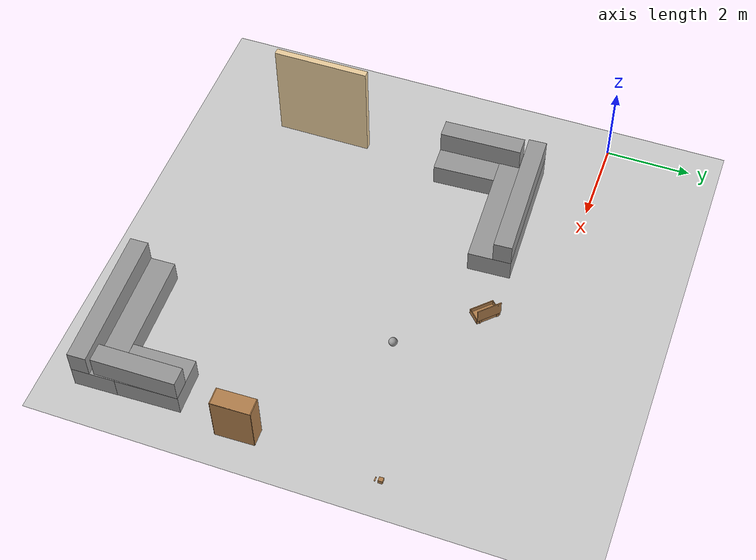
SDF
<sdf version="1.6">
 <world name="default">
  <model name="ground_plane">
   <static>1</static>
   <link name="link">
    <collision name="collision">
     <geometry><plane><normal>0 0 1</normal><size>100 100</size></plane></geometry>
     <surface>
      <contact><collide_bitmask>65535</collide_bitmask></contact>
      <friction><ode><mu>100</mu><mu2>50</mu2></ode></friction>
     </surface>
    </collision>
    <visual name="visual">
     <cast_shadows>0</cast_shadows>
     <geometry><plane><normal>0 0 1</normal><size>100 100</size></plane></geometry>
     <material>
      <script><uri>file://media/materials/scripts/gazebo.material</uri><name>Gazebo/Grey</name></script>
     </material>
    </visual>
   </link>
  </model>
  <model name="Sofa">
   <link name="link_0">
    <inertial>
     <mass>1.78921</mass>
     <inertia><ixx>0.19365</ixx><ixy>0</ixy><ixz>0</ixz><iyy>1.64196</iyy><iyz>0</iyz><izz>1.74651</izz></inertia>
    </inertial>
    <pose>0.515913 0.4827 -0.27126 0 -0 0</pose>
    <visual name="visual">
     <geometry><box><size>3.27317 1 0.546616</size></box></geometry>
     <material>
      <lighting>1</lighting>
      <script><uri>file://media/materials/scripts/gazebo.material</uri><name>Gazebo/Grey</name></script>
      <shader type="pixel"/>
      <emissive>0 0 0 1</emissive>
     </material>
    </visual>
    <collision name="collision">
     <geometry><box><size>3.27317 1 0.546616</size></box></geometry>
     <surface>
      <friction>
       <ode><mu>1</mu><mu2>1</mu2><fdir1>0 0 0</fdir1><slip1>0</slip1><slip2>0</slip2></ode>
       <torsional>
        <coefficient>1</coefficient>
        <patch_radius>0</patch_radius>
        <surface_radius>0</surface_radius>
        <use_patch_radius>1</use_patch_radius>
        <ode><slip>0</slip></ode>
       </torsional>
      </friction>
      <bounce><restitution_coefficient>0</restitution_coefficient><threshold>1e+06</threshold></bounce>
      <contact>
       <collide_without_contact>0</collide_without_contact>
       <collide_without_contact_bitmask>1</collide_without_contact_bitmask>
       <collide_bitmask>1</collide_bitmask>
       <ode>
        <soft_cfm>0</soft_cfm>
        <soft_erp>0.2</soft_erp>
        <kp>1e+13</kp>
        <kd>1</kd>
        <max_vel>0.01</max_vel>
        <min_depth>0</min_depth>
       </ode>
       <bullet>
        <split_impulse>1</split_impulse>
        <split_impulse_penetration_threshold>-0.01</split_impulse_penetration_threshold>
        <soft_cfm>0</soft_cfm>
        <soft_erp>0.2</soft_erp>
        <kp>1e+13</kp>
        <kd>1</kd>
       </bullet>
      </contact>
     </surface>
    </collision>
   </link>
   <link name="link_0_clone">
    <inertial>
     <mass>0.763707</mass>
     <inertia>
      <ixx>0.0306107</ixx>
      <ixy>0</ixy>
      <ixz>0</ixz>
      <iyy>0.700856</iyy>
      <iyz>0</iyz>
      <izz>0.693436</izz>
     </inertia>
    </inertial>
    <pose>0.515913 0.769281 0.275356 0 -0 0</pose>
    <visual name="visual">
     <geometry><box><size>3.27317 0.426838 0.546616</size></box></geometry>
     <material>
      <lighting>1</lighting>
      <script><uri>file://media/materials/scripts/gazebo.material</uri><name>Gazebo/Grey</name></script>
      <shader type="pixel"/>
      <emissive>0 0 0 1</emissive>
     </material>
    </visual>
    <collision name="collision">
     <geometry><box><size>3.27317 0.426838 0.546616</size></box></geometry>
     <surface>
      <friction>
       <ode><mu>1</mu><mu2>1</mu2><fdir1>0 0 0</fdir1><slip1>0</slip1><slip2>0</slip2></ode>
       <torsional>
        <coefficient>1</coefficient>
        <patch_radius>0</patch_radius>
        <surface_radius>0</surface_radius>
        <use_patch_radius>1</use_patch_radius>
        <ode><slip>0</slip></ode>
       </torsional>
      </friction>
      <bounce><restitution_coefficient>0</restitution_coefficient><threshold>1e+06</threshold></bounce>
      <contact>
       <collide_without_contact>0</collide_without_contact>
       <collide_without_contact_bitmask>1</collide_without_contact_bitmask>
       <collide_bitmask>1</collide_bitmask>
       <ode>
        <soft_cfm>0</soft_cfm>
        <soft_erp>0.2</soft_erp>
        <kp>1e+13</kp>
        <kd>1</kd>
        <max_vel>0.01</max_vel>
        <min_depth>0</min_depth>
       </ode>
       <bullet>
        <split_impulse>1</split_impulse>
        <split_impulse_penetration_threshold>-0.01</split_impulse_penetration_threshold>
        <soft_cfm>0</soft_cfm>
        <soft_erp>0.2</soft_erp>
        <kp>1e+13</kp>
        <kd>1</kd>
       </bullet>
      </contact>
     </surface>
    </collision>
   </link>
   <link name="link_0_clone_clone">
    <inertial>
     <mass>0.450951</mass>
     <inertia>
      <ixx>0.0180749</ixx>
      <ixy>0</ixy>
      <ixz>0</ixz>
      <iyy>0.151605</iyy>
      <iyz>0</iyz>
      <izz>0.147223</izz>
     </inertia>
    </inertial>
    <pose>-0.891825 -0.505668 0.267165 0 -0 1.5548</pose>
    <visual name="visual">
     <geometry><box><size>1.93274 0.426838 0.546616</size></box></geometry>
     <material>
      <lighting>1</lighting>
      <script><uri>file://media/materials/scripts/gazebo.material</uri><name>Gazebo/Grey</name></script>
      <shader type="pixel"/>
      <emissive>0 0 0 1</emissive>
     </material>
    </visual>
    <collision name="collision">
     <geometry><box><size>1.93274 0.426838 0.546616</size></box></geometry>
     <surface>
      <friction>
       <ode><mu>1</mu><mu2>1</mu2><fdir1>0 0 0</fdir1><slip1>0</slip1><slip2>0</slip2></ode>
       <torsional>
        <coefficient>1</coefficient>
        <patch_radius>0</patch_radius>
        <surface_radius>0</surface_radius>
        <use_patch_radius>1</use_patch_radius>
        <ode><slip>0</slip></ode>
       </torsional>
      </friction>
      <bounce><restitution_coefficient>0</restitution_coefficient><threshold>1e+06</threshold></bounce>
      <contact>
       <collide_without_contact>0</collide_without_contact>
       <collide_without_contact_bitmask>1</collide_without_contact_bitmask>
       <collide_bitmask>1</collide_bitmask>
       <ode>
        <soft_cfm>0</soft_cfm>
        <soft_erp>0.2</soft_erp>
        <kp>1e+13</kp>
        <kd>1</kd>
        <max_vel>0.01</max_vel>
        <min_depth>0</min_depth>
       </ode>
       <bullet>
        <split_impulse>1</split_impulse>
        <split_impulse_penetration_threshold>-0.01</split_impulse_penetration_threshold>
        <soft_cfm>0</soft_cfm>
        <soft_erp>0.2</soft_erp>
        <kp>1e+13</kp>
        <kd>1</kd>
       </bullet>
      </contact>
     </surface>
    </collision>
   </link>
   <link name="link_1">
    <inertial>
     <mass>0.773084</mass>
     <inertia>
      <ixx>0.155067</ixx>
      <ixy>0</ixy>
      <ixz>0</ixz>
      <iyy>0.0825363</iyy>
      <iyz>0</iyz>
      <izz>0.201378</izz>
     </inertia>
    </inertial>
    <pose>-0.620672 -0.746314 -0.27126 0 -0 0</pose>
    <visual name="visual">
     <geometry><box><size>1 1.45803 0.530235</size></box></geometry>
     <material>
      <lighting>1</lighting>
      <script><uri>file://media/materials/scripts/gazebo.material</uri><name>Gazebo/Grey</name></script>
      <shader type="pixel"/>
      <emissive>0 0 0 1</emissive>
     </material>
    </visual>
    <collision name="collision">
     <geometry><box><size>1 1.45803 0.530235</size></box></geometry>
     <surface>
      <friction>
       <ode><mu>1</mu><mu2>1</mu2><fdir1>0 0 0</fdir1><slip1>0</slip1><slip2>0</slip2></ode>
       <torsional>
        <coefficient>1</coefficient>
        <patch_radius>0</patch_radius>
        <surface_radius>0</surface_radius>
        <use_patch_radius>1</use_patch_radius>
        <ode><slip>0</slip></ode>
       </torsional>
      </friction>
      <bounce><restitution_coefficient>0</restitution_coefficient><threshold>1e+06</threshold></bounce>
      <contact>
       <collide_without_contact>0</collide_without_contact>
       <collide_without_contact_bitmask>1</collide_without_contact_bitmask>
       <collide_bitmask>1</collide_bitmask>
       <ode>
        <soft_cfm>0</soft_cfm>
        <soft_erp>0.2</soft_erp>
        <kp>1e+13</kp>
        <kd>1</kd>
        <max_vel>0.01</max_vel>
        <min_depth>0</min_depth>
       </ode>
       <bullet>
        <split_impulse>1</split_impulse>
        <split_impulse_penetration_threshold>-0.01</split_impulse_penetration_threshold>
        <soft_cfm>0</soft_cfm>
        <soft_erp>0.2</soft_erp>
        <kp>1e+13</kp>
        <kd>1</kd>
       </bullet>
      </contact>
     </surface>
    </collision>
   </link>
   <joint name="link_0_JOINT_0" type="revolute">
    <parent>link_0</parent>
    <child>link_1</child>
    <axis>
     <xyz>1 0 0</xyz>
     <limit>
      <lower>-1.79769e+308</lower>
      <upper>1.79769e+308</upper>
      <effort>-1</effort>
      <velocity>-1</velocity>
     </limit>
     <dynamics>
      <spring_reference>0</spring_reference>
      <spring_stiffness>0</spring_stiffness>
      <damping>0</damping>
     </dynamics>
     <use_parent_model_frame>0</use_parent_model_frame>
    </axis>
    <physics>
     <ode><limit><cfm>0</cfm><erp>0.2</erp></limit><suspension><cfm>0</cfm><erp>0.2</erp></suspension></ode>
    </physics>
   </joint>
   <joint name="link_0_JOINT_2" type="revolute">
    <parent>link_0</parent>
    <child>link_0_clone</child>
    <axis>
     <xyz>1 0 0</xyz>
     <limit>
      <lower>-1.79769e+308</lower>
      <upper>1.79769e+308</upper>
      <effort>-1</effort>
      <velocity>-1</velocity>
     </limit>
     <dynamics>
      <spring_reference>0</spring_reference>
      <spring_stiffness>0</spring_stiffness>
      <damping>0</damping>
     </dynamics>
     <use_parent_model_frame>0</use_parent_model_frame>
    </axis>
    <physics>
     <ode><limit><cfm>0</cfm><erp>0.2</erp></limit><suspension><cfm>0</cfm><erp>0.2</erp></suspension></ode>
    </physics>
   </joint>
   <joint name="link_1_JOINT_4" type="revolute">
    <parent>link_1</parent>
    <child>link_0_clone_clone</child>
    <axis>
     <xyz>1 0 0</xyz>
     <limit>
      <lower>-1.79769e+308</lower>
      <upper>1.79769e+308</upper>
      <effort>-1</effort>
      <velocity>-1</velocity>
     </limit>
     <dynamics>
      <spring_reference>0</spring_reference>
      <spring_stiffness>0</spring_stiffness>
      <damping>0</damping>
     </dynamics>
     <use_parent_model_frame>0</use_parent_model_frame>
    </axis>
    <physics>
     <ode><limit><cfm>0</cfm><erp>0.2</erp></limit><suspension><cfm>0</cfm><erp>0.2</erp></suspension></ode>
    </physics>
   </joint>
   <static>0</static>
   <pose>2.339 -2.21498 0.544563 1e-06 3e-06 0.046</pose>
  </model>
  <model name="colored_wall">
   <pose>2.23233 -6.67504 0 0 -0 0</pose>
   <link name="Wall_0">
    <collision name="Wall_0_Collision">
     <geometry><box><size>2.25 0.15 2.5</size></box></geometry>
     <pose>0 0 1.25 0 -0 0</pose>
    </collision>
    <visual name="Wall_0_Visual">
     <pose>0 0 1.25 0 -0 0</pose>
     <geometry><box><size>2.25 0.15 2.5</size></box></geometry>
     <material>
      <script><uri>file://media/materials/scripts/gazebo.material</uri><name>Gazebo/Grey</name></script>
      <ambient>0.921569 0.807843 0.615686 1</ambient>
     </material>
     <meta><layer>0</layer></meta>
    </visual>
    <pose>-0.487512 0 0 0 -0 1.5708</pose>
   </link>
   <static>1</static>
  </model>
  <model name="Sofa_0">
   <link name="link_0">
    <inertial>
     <mass>1.78921</mass>
     <inertia><ixx>0.19365</ixx><ixy>0</ixy><ixz>0</ixz><iyy>1.64196</iyy><iyz>0</iyz><izz>1.74651</izz></inertia>
    </inertial>
    <pose>0.515913 0.4827 -0.27126 0 -0 0</pose>
    <visual name="visual">
     <geometry><box><size>3.27317 1 0.546616</size></box></geometry>
     <material>
      <lighting>1</lighting>
      <script><uri>file://media/materials/scripts/gazebo.material</uri><name>Gazebo/Grey</name></script>
      <shader type="pixel"/>
      <emissive>0 0 0 1</emissive>
     </material>
    </visual>
    <collision name="collision">
     <geometry><box><size>3.27317 1 0.546616</size></box></geometry>
     <surface>
      <friction>
       <ode><mu>1</mu><mu2>1</mu2><fdir1>0 0 0</fdir1><slip1>0</slip1><slip2>0</slip2></ode>
       <torsional>
        <coefficient>1</coefficient>
        <patch_radius>0</patch_radius>
        <surface_radius>0</surface_radius>
        <use_patch_radius>1</use_patch_radius>
        <ode><slip>0</slip></ode>
       </torsional>
      </friction>
      <bounce><restitution_coefficient>0</restitution_coefficient><threshold>1e+06</threshold></bounce>
      <contact>
       <collide_without_contact>0</collide_without_contact>
       <collide_without_contact_bitmask>1</collide_without_contact_bitmask>
       <collide_bitmask>1</collide_bitmask>
       <ode>
        <soft_cfm>0</soft_cfm>
        <soft_erp>0.2</soft_erp>
        <kp>1e+13</kp>
        <kd>1</kd>
        <max_vel>0.01</max_vel>
        <min_depth>0</min_depth>
       </ode>
       <bullet>
        <split_impulse>1</split_impulse>
        <split_impulse_penetration_threshold>-0.01</split_impulse_penetration_threshold>
        <soft_cfm>0</soft_cfm>
        <soft_erp>0.2</soft_erp>
        <kp>1e+13</kp>
        <kd>1</kd>
       </bullet>
      </contact>
     </surface>
    </collision>
   </link>
   <link name="link_0_clone">
    <inertial>
     <mass>0.763707</mass>
     <inertia>
      <ixx>0.0306107</ixx>
      <ixy>0</ixy>
      <ixz>0</ixz>
      <iyy>0.700856</iyy>
      <iyz>0</iyz>
      <izz>0.693436</izz>
     </inertia>
    </inertial>
    <pose>0.515913 0.769281 0.275356 0 -0 0</pose>
    <visual name="visual">
     <geometry><box><size>3.27317 0.426838 0.546616</size></box></geometry>
     <material>
      <lighting>1</lighting>
      <script><uri>file://media/materials/scripts/gazebo.material</uri><name>Gazebo/Grey</name></script>
      <shader type="pixel"/>
      <emissive>0 0 0 1</emissive>
     </material>
    </visual>
    <collision name="collision">
     <geometry><box><size>3.27317 0.426838 0.546616</size></box></geometry>
     <surface>
      <friction>
       <ode><mu>1</mu><mu2>1</mu2><fdir1>0 0 0</fdir1><slip1>0</slip1><slip2>0</slip2></ode>
       <torsional>
        <coefficient>1</coefficient>
        <patch_radius>0</patch_radius>
        <surface_radius>0</surface_radius>
        <use_patch_radius>1</use_patch_radius>
        <ode><slip>0</slip></ode>
       </torsional>
      </friction>
      <bounce><restitution_coefficient>0</restitution_coefficient><threshold>1e+06</threshold></bounce>
      <contact>
       <collide_without_contact>0</collide_without_contact>
       <collide_without_contact_bitmask>1</collide_without_contact_bitmask>
       <collide_bitmask>1</collide_bitmask>
       <ode>
        <soft_cfm>0</soft_cfm>
        <soft_erp>0.2</soft_erp>
        <kp>1e+13</kp>
        <kd>1</kd>
        <max_vel>0.01</max_vel>
        <min_depth>0</min_depth>
       </ode>
       <bullet>
        <split_impulse>1</split_impulse>
        <split_impulse_penetration_threshold>-0.01</split_impulse_penetration_threshold>
        <soft_cfm>0</soft_cfm>
        <soft_erp>0.2</soft_erp>
        <kp>1e+13</kp>
        <kd>1</kd>
       </bullet>
      </contact>
     </surface>
    </collision>
   </link>
   <link name="link_0_clone_clone">
    <inertial>
     <mass>0.450951</mass>
     <inertia>
      <ixx>0.0180749</ixx>
      <ixy>0</ixy>
      <ixz>0</ixz>
      <iyy>0.151605</iyy>
      <iyz>0</iyz>
      <izz>0.147223</izz>
     </inertia>
    </inertial>
    <pose>-0.891825 -0.505668 0.267165 0 -0 1.5548</pose>
    <visual name="visual">
     <geometry><box><size>1.93274 0.426838 0.546616</size></box></geometry>
     <material>
      <lighting>1</lighting>
      <script><uri>file://media/materials/scripts/gazebo.material</uri><name>Gazebo/Grey</name></script>
      <shader type="pixel"/>
      <emissive>0 0 0 1</emissive>
     </material>
    </visual>
    <collision name="collision">
     <geometry><box><size>1.93274 0.426838 0.546616</size></box></geometry>
     <surface>
      <friction>
       <ode><mu>1</mu><mu2>1</mu2><fdir1>0 0 0</fdir1><slip1>0</slip1><slip2>0</slip2></ode>
       <torsional>
        <coefficient>1</coefficient>
        <patch_radius>0</patch_radius>
        <surface_radius>0</surface_radius>
        <use_patch_radius>1</use_patch_radius>
        <ode><slip>0</slip></ode>
       </torsional>
      </friction>
      <bounce><restitution_coefficient>0</restitution_coefficient><threshold>1e+06</threshold></bounce>
      <contact>
       <collide_without_contact>0</collide_without_contact>
       <collide_without_contact_bitmask>1</collide_without_contact_bitmask>
       <collide_bitmask>1</collide_bitmask>
       <ode>
        <soft_cfm>0</soft_cfm>
        <soft_erp>0.2</soft_erp>
        <kp>1e+13</kp>
        <kd>1</kd>
        <max_vel>0.01</max_vel>
        <min_depth>0</min_depth>
       </ode>
       <bullet>
        <split_impulse>1</split_impulse>
        <split_impulse_penetration_threshold>-0.01</split_impulse_penetration_threshold>
        <soft_cfm>0</soft_cfm>
        <soft_erp>0.2</soft_erp>
        <kp>1e+13</kp>
        <kd>1</kd>
       </bullet>
      </contact>
     </surface>
    </collision>
   </link>
   <link name="link_1">
    <inertial>
     <mass>0.773084</mass>
     <inertia>
      <ixx>0.155067</ixx>
      <ixy>0</ixy>
      <ixz>0</ixz>
      <iyy>0.0825363</iyy>
      <iyz>0</iyz>
      <izz>0.201378</izz>
     </inertia>
    </inertial>
    <pose>-0.620672 -0.746314 -0.27126 0 -0 0</pose>
    <visual name="visual">
     <geometry><box><size>1 1.45803 0.530235</size></box></geometry>
     <material>
      <lighting>1</lighting>
      <script><uri>file://media/materials/scripts/gazebo.material</uri><name>Gazebo/Grey</name></script>
      <shader type="pixel"/>
      <emissive>0 0 0 1</emissive>
     </material>
    </visual>
    <collision name="collision">
     <geometry><box><size>1 1.45803 0.530235</size></box></geometry>
     <surface>
      <friction>
       <ode><mu>1</mu><mu2>1</mu2><fdir1>0 0 0</fdir1><slip1>0</slip1><slip2>0</slip2></ode>
       <torsional>
        <coefficient>1</coefficient>
        <patch_radius>0</patch_radius>
        <surface_radius>0</surface_radius>
        <use_patch_radius>1</use_patch_radius>
        <ode><slip>0</slip></ode>
       </torsional>
      </friction>
      <bounce><restitution_coefficient>0</restitution_coefficient><threshold>1e+06</threshold></bounce>
      <contact>
       <collide_without_contact>0</collide_without_contact>
       <collide_without_contact_bitmask>1</collide_without_contact_bitmask>
       <collide_bitmask>1</collide_bitmask>
       <ode>
        <soft_cfm>0</soft_cfm>
        <soft_erp>0.2</soft_erp>
        <kp>1e+13</kp>
        <kd>1</kd>
        <max_vel>0.01</max_vel>
        <min_depth>0</min_depth>
       </ode>
       <bullet>
        <split_impulse>1</split_impulse>
        <split_impulse_penetration_threshold>-0.01</split_impulse_penetration_threshold>
        <soft_cfm>0</soft_cfm>
        <soft_erp>0.2</soft_erp>
        <kp>1e+13</kp>
        <kd>1</kd>
       </bullet>
      </contact>
     </surface>
    </collision>
   </link>
   <joint name="link_0_JOINT_0" type="revolute">
    <parent>link_0</parent>
    <child>link_1</child>
    <axis>
     <xyz>1 0 0</xyz>
     <limit>
      <lower>-1.79769e+308</lower>
      <upper>1.79769e+308</upper>
      <effort>-1</effort>
      <velocity>-1</velocity>
     </limit>
     <dynamics>
      <spring_reference>0</spring_reference>
      <spring_stiffness>0</spring_stiffness>
      <damping>0</damping>
     </dynamics>
     <use_parent_model_frame>0</use_parent_model_frame>
    </axis>
    <physics>
     <ode><limit><cfm>0</cfm><erp>0.2</erp></limit><suspension><cfm>0</cfm><erp>0.2</erp></suspension></ode>
    </physics>
   </joint>
   <joint name="link_0_JOINT_2" type="revolute">
    <parent>link_0</parent>
    <child>link_0_clone</child>
    <axis>
     <xyz>1 0 0</xyz>
     <limit>
      <lower>-1.79769e+308</lower>
      <upper>1.79769e+308</upper>
      <effort>-1</effort>
      <velocity>-1</velocity>
     </limit>
     <dynamics>
      <spring_reference>0</spring_reference>
      <spring_stiffness>0</spring_stiffness>
      <damping>0</damping>
     </dynamics>
     <use_parent_model_frame>0</use_parent_model_frame>
    </axis>
    <physics>
     <ode><limit><cfm>0</cfm><erp>0.2</erp></limit><suspension><cfm>0</cfm><erp>0.2</erp></suspension></ode>
    </physics>
   </joint>
   <joint name="link_1_JOINT_4" type="revolute">
    <parent>link_1</parent>
    <child>link_0_clone_clone</child>
    <axis>
     <xyz>1 0 0</xyz>
     <limit>
      <lower>-1.79769e+308</lower>
      <upper>1.79769e+308</upper>
      <effort>-1</effort>
      <velocity>-1</velocity>
     </limit>
     <dynamics>
      <spring_reference>0</spring_reference>
      <spring_stiffness>0</spring_stiffness>
      <damping>0</damping>
     </dynamics>
     <use_parent_model_frame>0</use_parent_model_frame>
    </axis>
    <physics>
     <ode><limit><cfm>0</cfm><erp>0.2</erp></limit><suspension><cfm>0</cfm><erp>0.2</erp></suspension></ode>
    </physics>
   </joint>
   <static>0</static>
   <pose>9.12328 -8.19479 0.544568 8e-06 -0 -3.11228</pose>
  </model>
  <model name="my_ball">
   <link name="link_0">
    <inertial>
     <mass>1</mass>
     <inertia><ixx>0.1</ixx><ixy>0</ixy><ixz>0</ixz><iyy>0.1</iyy><iyz>0</iyz><izz>0.1</izz></inertia>
    </inertial>
    <visual name="visual">
     <geometry><sphere><radius>0.1</radius></sphere></geometry>
     <material>
      <lighting>1</lighting>
      <script><uri>file://media/materials/scripts/gazebo.material</uri><name>Gazebo/Grey</name></script>
      <shader type="pixel"><normal_map>__default__</normal_map></shader>
      <ambient>1 1 1 1</ambient>
      <diffuse>1 1 1 1</diffuse>
      <specular>1 1 1 1</specular>
      <emissive>0 0 0 1</emissive>
     </material>
    </visual>
    <collision name="collision">
     <geometry><sphere><radius>0.1</radius></sphere></geometry>
     <surface>
      <friction>
       <ode><mu>1</mu><mu2>1</mu2><fdir1>0 0 0</fdir1><slip1>0</slip1><slip2>0</slip2></ode>
       <torsional>
        <coefficient>1</coefficient>
        <patch_radius>0</patch_radius>
        <surface_radius>0</surface_radius>
        <use_patch_radius>1</use_patch_radius>
        <ode><slip>0</slip></ode>
       </torsional>
      </friction>
      <bounce><restitution_coefficient>0</restitution_coefficient><threshold>1e+06</threshold></bounce>
      <contact>
       <collide_without_contact>0</collide_without_contact>
       <collide_without_contact_bitmask>1</collide_without_contact_bitmask>
       <collide_bitmask>1</collide_bitmask>
       <ode>
        <soft_cfm>0</soft_cfm>
        <soft_erp>0.2</soft_erp>
        <kp>1e+13</kp>
        <kd>1</kd>
        <max_vel>0.01</max_vel>
        <min_depth>0</min_depth>
       </ode>
       <bullet>
        <split_impulse>1</split_impulse>
        <split_impulse_penetration_threshold>-0.01</split_impulse_penetration_threshold>
        <soft_cfm>0</soft_cfm>
        <soft_erp>0.2</soft_erp>
        <kp>1e+13</kp>
        <kd>1</kd>
       </bullet>
      </contact>
     </surface>
    </collision>
   </link>
   <static>0</static>
   <pose>7.03331 -3.01641 0.1 0 -0 0</pose>
  </model>
  <model name="bookshelf">
   <static>1</static>
   <link name="link">
    <inertial><mass>1</mass></inertial>
    <collision name="back">
     <pose>0 0.005 0.6 0 -0 0</pose>
     <geometry><box><size>0.9 0.01 1.2</size></box></geometry>
    </collision>
    <visual name="visual1">
     <pose>0 0.005 0.6 0 -0 0</pose>
     <geometry><box><size>0.9 0.01 1.2</size></box></geometry>
     <material>
      <script><uri>file://media/materials/scripts/gazebo.material</uri><name>Gazebo/Wood</name></script>
     </material>
    </visual>
    <collision name="left_side">
     <pose>0.45 -0.195 0.6 0 -0 0</pose>
     <geometry><box><size>0.02 0.4 1.2</size></box></geometry>
    </collision>
    <visual name="visual2">
     <pose>0.45 -0.195 0.6 0 -0 0</pose>
     <geometry><box><size>0.02 0.4 1.2</size></box></geometry>
     <material>
      <script><uri>file://media/materials/scripts/gazebo.material</uri><name>Gazebo/Wood</name></script>
     </material>
    </visual>
    <collision name="right_side">
     <pose>-0.45 -0.195 0.6 0 -0 0</pose>
     <geometry><box><size>0.02 0.4 1.2</size></box></geometry>
    </collision>
    <visual name="visual3">
     <pose>-0.45 -0.195 0.6 0 -0 0</pose>
     <geometry><box><size>0.02 0.4 1.2</size></box></geometry>
     <material>
      <script><uri>file://media/materials/scripts/gazebo.material</uri><name>Gazebo/Wood</name></script>
     </material>
    </visual>
    <collision name="bottom">
     <pose>0 -0.195 0.03 0 -0 0</pose>
     <geometry><box><size>0.88 0.4 0.06</size></box></geometry>
    </collision>
    <visual name="visual4">
     <pose>0 -0.195 0.03 0 -0 0</pose>
     <geometry><box><size>0.88 0.4 0.06</size></box></geometry>
     <material>
      <script><uri>file://media/materials/scripts/gazebo.material</uri><name>Gazebo/Wood</name></script>
     </material>
    </visual>
    <collision name="top">
     <pose>0 -0.195 1.19 0 -0 0</pose>
     <geometry><box><size>0.88 0.4 0.02</size></box></geometry>
    </collision>
    <visual name="visual5">
     <pose>0 -0.195 1.19 0 -0 0</pose>
     <geometry><box><size>0.88 0.4 0.02</size></box></geometry>
     <material>
      <script><uri>file://media/materials/scripts/gazebo.material</uri><name>Gazebo/Wood</name></script>
     </material>
    </visual>
    <collision name="low_shelf">
     <pose>0 -0.195 0.43 0 -0 0</pose>
     <geometry><box><size>0.88 0.4 0.02</size></box></geometry>
    </collision>
    <visual name="visual6">
     <pose>0 -0.195 0.43 0 -0 0</pose>
     <geometry><box><size>0.88 0.4 0.02</size></box></geometry>
     <material>
      <script><uri>file://media/materials/scripts/gazebo.material</uri><name>Gazebo/Wood</name></script>
     </material>
    </visual>
    <collision name="high_shelf">
     <pose>0 -0.195 0.8 0 -0 0</pose>
     <geometry><box><size>0.88 0.4 0.02</size></box></geometry>
    </collision>
    <visual name="visual7">
     <pose>0 -0.195 0.8 0 -0 0</pose>
     <geometry><box><size>0.88 0.4 0.02</size></box></geometry>
     <material>
      <script><uri>file://media/materials/scripts/gazebo.material</uri><name>Gazebo/Wood</name></script>
     </material>
    </visual>
   </link>
   <pose>10.424 -5.33684 0 0 0 -1.54381</pose>
  </model>
  <model name="wood_cube_10cm">
   <link name="link">
    <pose>0 0 0.05 0 -0 0</pose>
    <inertial>
     <mass>0.5167</mass>
     <inertia>
      <ixx>0.000861167</ixx>
      <ixy>0</ixy>
      <ixz>0</ixz>
      <iyy>0.000861167</iyy>
      <iyz>0</iyz>
      <izz>0.000861167</izz>
     </inertia>
    </inertial>
    <collision name="collision">
     <geometry><box><size>0.1 0.1 0.1</size></box></geometry>
     <surface>
      <contact>
       <poissons_ratio>0.347</poissons_ratio>
       <elastic_modulus>8.8e+09</elastic_modulus>
       <ode><kp>100000</kp><kd>100</kd><max_vel>100</max_vel><min_depth>0.001</min_depth></ode>
      </contact>
      <friction>
       <torsional>
        <coefficient>1</coefficient>
        <use_patch_radius>0</use_patch_radius>
        <surface_radius>0.01</surface_radius>
       </torsional>
      </friction>
     </surface>
    </collision>
    <visual name="visual">
     <geometry><box><size>0.1 0.1 0.1</size></box></geometry>
     <material>
      <script><uri>file://media/materials/scripts/gazebo.material</uri><name>Gazebo/Wood</name></script>
     </material>
    </visual>
   </link>
   <pose>10.3417 -2.09533 -0.001013 0 -0 0</pose>
  </model>
  <model name="wood_block_10_2_1cm">
   <link name="link">
    <pose>0 0 0.005 0 -0 0</pose>
    <inertial>
     <mass>0.0125</mass>
     <inertia>
      <ixx>7.55208e-07</ixx>
      <ixy>0</ixy>
      <ixz>0</ixz>
      <iyy>1.05208e-05</iyy>
      <iyz>0</iyz>
      <izz>1.10677e-05</izz>
     </inertia>
    </inertial>
    <collision name="collision">
     <geometry><box><size>0.1 0.025 0.01</size></box></geometry>
     <surface>
      <contact>
       <poissons_ratio>0.347</poissons_ratio>
       <elastic_modulus>8.8e+09</elastic_modulus>
       <ode><kp>100000</kp><kd>1</kd><max_vel>1</max_vel><min_depth>0.001</min_depth></ode>
      </contact>
      <friction>
       <torsional>
        <coefficient>1</coefficient>
        <use_patch_radius>0</use_patch_radius>
        <surface_radius>0.05</surface_radius>
       </torsional>
      </friction>
     </surface>
    </collision>
    <visual name="visual">
     <geometry><box><size>0.1 0.025 0.01</size></box></geometry>
     <material>
      <script><uri>file://media/materials/scripts/gazebo.material</uri><name>Gazebo/Wood</name></script>
     </material>
    </visual>
   </link>
   <pose>10.3256 -2.2273 -0.001 0 -0 0</pose>
  </model>
  <model name="wooden_case">
   <link name="base">
    <pose>0 0 0.024 0 -0 0</pose>
    <inertial>
     <pose>-0.022184 0 0.171592 0 -0 0</pose>
     <mass>3.96264</mass>
     <inertia>
      <ixx>0.213536</ixx>
      <ixy>0</ixy>
      <ixz>0.000779377</ixz>
      <iyy>0.0708943</iyy>
      <iyz>0</iyz>
      <izz>0.154604</izz>
     </inertia>
    </inertial>
    <collision name="collision_back">
     <pose>-0.053975 0 0.1778 0 -0 0</pose>
     <geometry><box><size>0.01905 0.5461 0.3175</size></box></geometry>
     <surface>
      <contact>
       <poissons_ratio>0.347</poissons_ratio>
       <elastic_modulus>8.8e+09</elastic_modulus>
       <ode><kp>100000</kp><kd>100</kd><max_vel>100</max_vel><min_depth>0.001</min_depth></ode>
      </contact>
      <friction>
       <torsional>
        <coefficient>1</coefficient>
        <use_patch_radius>0</use_patch_radius>
        <surface_radius>0.01</surface_radius>
       </torsional>
      </friction>
     </surface>
    </collision>
    <visual name="visual_back">
     <pose>-0.053975 0 0.1778 0 -0 0</pose>
     <geometry><box><size>0.01905 0.5461 0.3175</size></box></geometry>
     <material>
      <script><uri>file://media/materials/scripts/gazebo.material</uri><name>Gazebo/Wood</name></script>
     </material>
    </visual>
    <collision name="collision_bottom">
     <pose>0 0 0.009525 0 -0 0</pose>
     <geometry><box><size>0.127 0.5842 0.01905</size></box></geometry>
     <surface>
      <contact>
       <poissons_ratio>0.347</poissons_ratio>
       <elastic_modulus>8.8e+09</elastic_modulus>
       <ode><kp>100000</kp><kd>100</kd><max_vel>100</max_vel><min_depth>0.001</min_depth></ode>
      </contact>
      <friction>
       <torsional>
        <coefficient>1</coefficient>
        <use_patch_radius>0</use_patch_radius>
        <surface_radius>0.01</surface_radius>
       </torsional>
      </friction>
     </surface>
    </collision>
    <visual name="visual_bottom">
     <pose>0 0 0.009525 0 -0 0</pose>
     <geometry><box><size>0.127 0.5842 0.01905</size></box></geometry>
     <material>
      <script><uri>file://media/materials/scripts/gazebo.material</uri><name>Gazebo/Wood</name></script>
     </material>
    </visual>
    <collision name="collision_top">
     <pose>0 0 0.346075 0 -0 0</pose>
     <geometry><box><size>0.127 0.5842 0.01905</size></box></geometry>
     <surface>
      <contact>
       <poissons_ratio>0.347</poissons_ratio>
       <elastic_modulus>8.8e+09</elastic_modulus>
       <ode><kp>100000</kp><kd>100</kd><max_vel>100</max_vel><min_depth>0.001</min_depth></ode>
      </contact>
      <friction>
       <torsional>
        <coefficient>1</coefficient>
        <use_patch_radius>0</use_patch_radius>
        <surface_radius>0.01</surface_radius>
       </torsional>
      </friction>
     </surface>
    </collision>
    <visual name="visual_top">
     <pose>0 0 0.346075 0 -0 0</pose>
     <geometry><box><size>0.127 0.5842 0.01905</size></box></geometry>
     <material>
      <script><uri>file://media/materials/scripts/gazebo.material</uri><name>Gazebo/Wood</name></script>
     </material>
    </visual>
    <collision name="collision_left">
     <pose>0 -0.282575 0.1778 0 -0 0</pose>
     <geometry><box><size>0.127 0.01905 0.3175</size></box></geometry>
     <surface>
      <contact>
       <poissons_ratio>0.347</poissons_ratio>
       <elastic_modulus>8.8e+09</elastic_modulus>
       <ode><kp>100000</kp><kd>100</kd><max_vel>100</max_vel><min_depth>0.001</min_depth></ode>
      </contact>
      <friction>
       <torsional>
        <coefficient>1</coefficient>
        <use_patch_radius>0</use_patch_radius>
        <surface_radius>0.01</surface_radius>
       </torsional>
      </friction>
     </surface>
    </collision>
    <visual name="visual_left">
     <pose>0 -0.282575 0.1778 0 -0 0</pose>
     <geometry><box><size>0.127 0.01905 0.3175</size></box></geometry>
     <material>
      <script><uri>file://media/materials/scripts/gazebo.material</uri><name>Gazebo/Wood</name></script>
     </material>
    </visual>
    <collision name="collision_right">
     <pose>0 0.282575 0.1778 0 -0 0</pose>
     <geometry><box><size>0.127 0.01905 0.3175</size></box></geometry>
     <surface>
      <contact>
       <poissons_ratio>0.347</poissons_ratio>
       <elastic_modulus>8.8e+09</elastic_modulus>
       <ode><kp>100000</kp><kd>100</kd><max_vel>100</max_vel><min_depth>0.001</min_depth></ode>
      </contact>
      <friction>
       <torsional>
        <coefficient>1</coefficient>
        <use_patch_radius>0</use_patch_radius>
        <surface_radius>0.01</surface_radius>
       </torsional>
      </friction>
     </surface>
    </collision>
    <visual name="visual_right">
     <pose>0 0.282575 0.1778 0 -0 0</pose>
     <geometry><box><size>0.127 0.01905 0.3175</size></box></geometry>
     <material>
      <script><uri>file://media/materials/scripts/gazebo.material</uri><name>Gazebo/Wood</name></script>
     </material>
    </visual>
    <collision name="collision_block_left">
     <pose>0.0095 -0.2151 -0.012 0 -0 0</pose>
     <geometry><box><size>0.108 0.05 0.024</size></box></geometry>
     <surface>
      <contact>
       <poissons_ratio>0.347</poissons_ratio>
       <elastic_modulus>8.8e+09</elastic_modulus>
       <ode><kp>100000</kp><kd>100</kd><max_vel>100</max_vel><min_depth>0.001</min_depth></ode>
      </contact>
      <friction>
       <torsional>
        <coefficient>1</coefficient>
        <use_patch_radius>0</use_patch_radius>
        <surface_radius>0.01</surface_radius>
       </torsional>
      </friction>
     </surface>
    </collision>
    <visual name="visual_block_left">
     <pose>0.0095 -0.2151 -0.012 0 -0 0</pose>
     <geometry><box><size>0.108 0.05 0.024</size></box></geometry>
     <material>
      <script><uri>file://media/materials/scripts/gazebo.material</uri><name>Gazebo/Wood</name></script>
     </material>
    </visual>
    <collision name="collision_block_right">
     <pose>0.0095 0.2151 -0.012 0 -0 0</pose>
     <geometry><box><size>0.108 0.05 0.024</size></box></geometry>
     <surface>
      <contact>
       <poissons_ratio>0.347</poissons_ratio>
       <elastic_modulus>8.8e+09</elastic_modulus>
       <ode><kp>100000</kp><kd>100</kd><max_vel>100</max_vel><min_depth>0.001</min_depth></ode>
      </contact>
      <friction>
       <torsional>
        <coefficient>1</coefficient>
        <use_patch_radius>0</use_patch_radius>
        <surface_radius>0.01</surface_radius>
       </torsional>
      </friction>
     </surface>
    </collision>
    <visual name="visual_block_right">
     <pose>0.0095 0.2151 -0.012 0 -0 0</pose>
     <geometry><box><size>0.108 0.05 0.024</size></box></geometry>
     <material>
      <script><uri>file://media/materials/scripts/gazebo.material</uri><name>Gazebo/Wood</name></script>
     </material>
    </visual>
   </link>
   <link name="lid">
    <pose>0.243775 0 0.009525 0 -0 0</pose>
    <inertial>
     <mass>1.97874</mass>
     <inertia>
      <ixx>0.0563367</ixx>
      <ixy>0</ixy>
      <ixz>0</ixz>
      <iyy>0.020911</iyy>
      <iyz>0</iyz>
      <izz>0.0771281</izz>
     </inertia>
    </inertial>
    <collision name="collision">
     <geometry><box><size>0.3556 0.5842 0.01905</size></box></geometry>
     <surface>
      <contact>
       <poissons_ratio>0.347</poissons_ratio>
       <elastic_modulus>8.8e+09</elastic_modulus>
       <ode><kp>100000</kp><kd>100</kd><max_vel>100</max_vel><min_depth>0.001</min_depth></ode>
      </contact>
      <friction>
       <torsional>
        <coefficient>1</coefficient>
        <use_patch_radius>0</use_patch_radius>
        <surface_radius>0.01</surface_radius>
       </torsional>
      </friction>
     </surface>
    </collision>
    <visual name="visual">
     <geometry><box><size>0.3556 0.5842 0.01905</size></box></geometry>
     <material>
      <script><uri>file://media/materials/scripts/gazebo.material</uri><name>Gazebo/Wood</name></script>
     </material>
    </visual>
    <visual name="tee_nut_1">
     <pose>0.122 -0.216 0 0 -0 0</pose>
     <geometry><cylinder><radius>0.00635</radius><length>0.0192405</length></cylinder></geometry>
     <material>
      <script><uri>file://media/materials/scripts/gazebo.material</uri><name>Gazebo/Grey</name></script>
     </material>
    </visual>
    <visual name="tee_nut_2">
     <pose>0.122 -0.088 0 0 -0 0</pose>
     <geometry><cylinder><radius>0.00635</radius><length>0.0192405</length></cylinder></geometry>
     <material>
      <script><uri>file://media/materials/scripts/gazebo.material</uri><name>Gazebo/Grey</name></script>
     </material>
    </visual>
    <visual name="tee_nut_3">
     <pose>0.122 0.088 0 0 -0 0</pose>
     <geometry><cylinder><radius>0.00635</radius><length>0.0192405</length></cylinder></geometry>
     <material>
      <script><uri>file://media/materials/scripts/gazebo.material</uri><name>Gazebo/Grey</name></script>
     </material>
    </visual>
    <visual name="tee_nut_4">
     <pose>0.122 0.216 0 0 -0 0</pose>
     <geometry><cylinder><radius>0.00635</radius><length>0.0192405</length></cylinder></geometry>
     <material>
      <script><uri>file://media/materials/scripts/gazebo.material</uri><name>Gazebo/Grey</name></script>
     </material>
    </visual>
   </link>
   <joint name="lid_hinge" type="revolute">
    <pose>-0.1778 0 0.01905 0 -0 0</pose>
    <parent>base</parent>
    <child>lid</child>
    <axis>
     <xyz>0 1 0</xyz>
     <limit><upper>0.523599</upper><lower>-1.5708</lower></limit>
     <use_parent_model_frame>0</use_parent_model_frame>
     <dynamics><spring_reference>0</spring_reference><spring_stiffness>0</spring_stiffness></dynamics>
    </axis>
   </joint>
   <pose>5.71715 -1.22219 0.06247 0 -1.57079 0.781676</pose>
  </model>
 </world>
</sdf>
